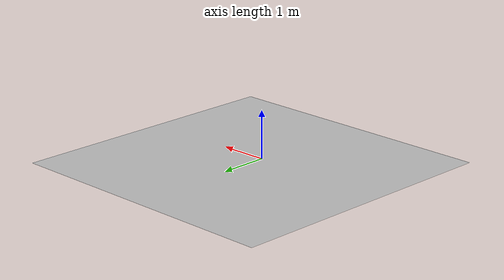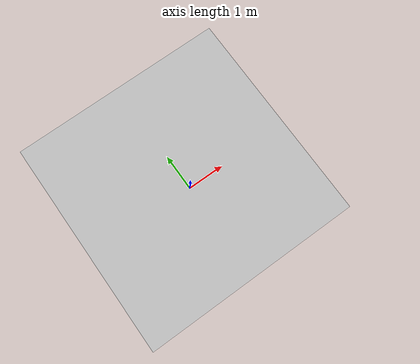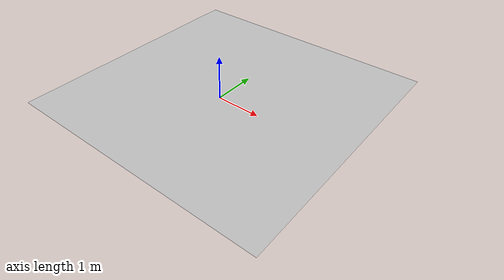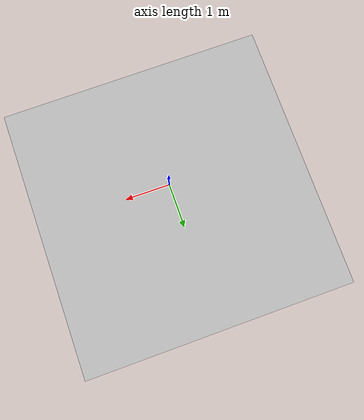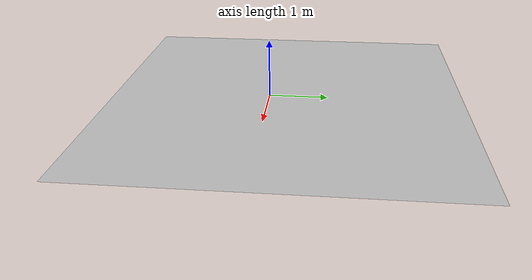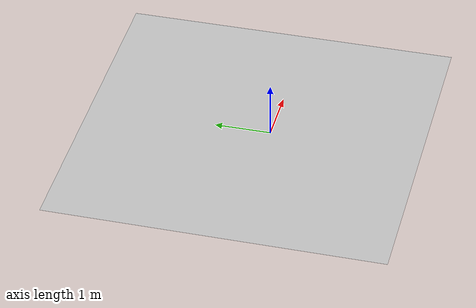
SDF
<?xml version="1.0"?>
<sdf version="1.7">
  <world name="baked_route_view_world">
    <scene>
      <ambient>0.85 0.85 0.85 1</ambient>
      <background>0.86 0.91 0.98 1</background>
      <shadows>0</shadows>
    </scene>
    <gui fullscreen="0">
      <camera name="user_camera">
        <pose>0 0 7.5 0 1.570796 1.570796</pose>
        <view_controller>orbit</view_controller>
      </camera>
    </gui>
    <light name="sun" type="directional">
      <cast_shadows>0</cast_shadows>
      <pose>0 0 8 0 0 0</pose>
      <diffuse>1 1 1 1</diffuse>
      <specular>0.1 0.1 0.1 1</specular>
      <direction>0 0 -1</direction>
    </light>
    <model name="baked_route_map">
      <static>1</static>
      <pose>0 0.3 0 0 0 0</pose>
      <link name="map_link">
        <visual name="baked_route_visual">
          <geometry>
            <mesh>
              <uri>file:///home/quocbao/my_robot_vision_full_project/my_robot_vision/route_drawing_lab/outputs/session_20260608_132843/baked_manual_middle/meshes/autonomous_map_route_baked.dae</uri>
              <scale>-1 1 1</scale>
            </mesh>
          </geometry>
        </visual>
      </link>
    </model>
  </world>
</sdf>
